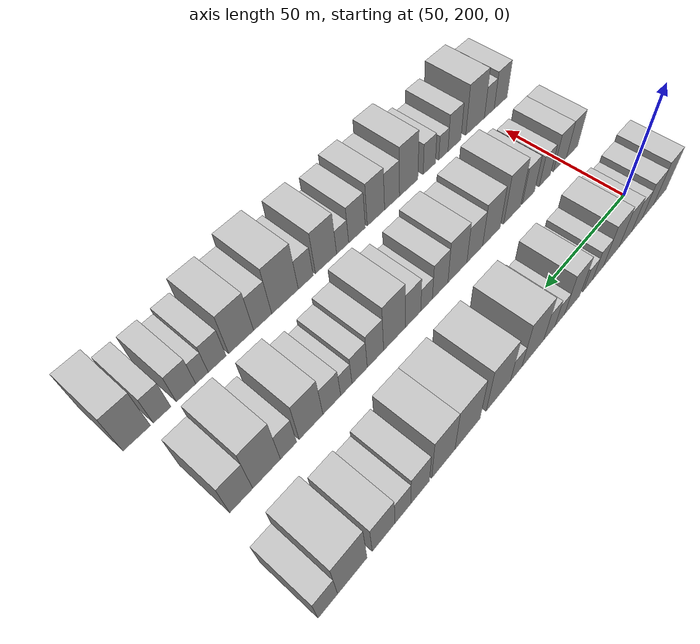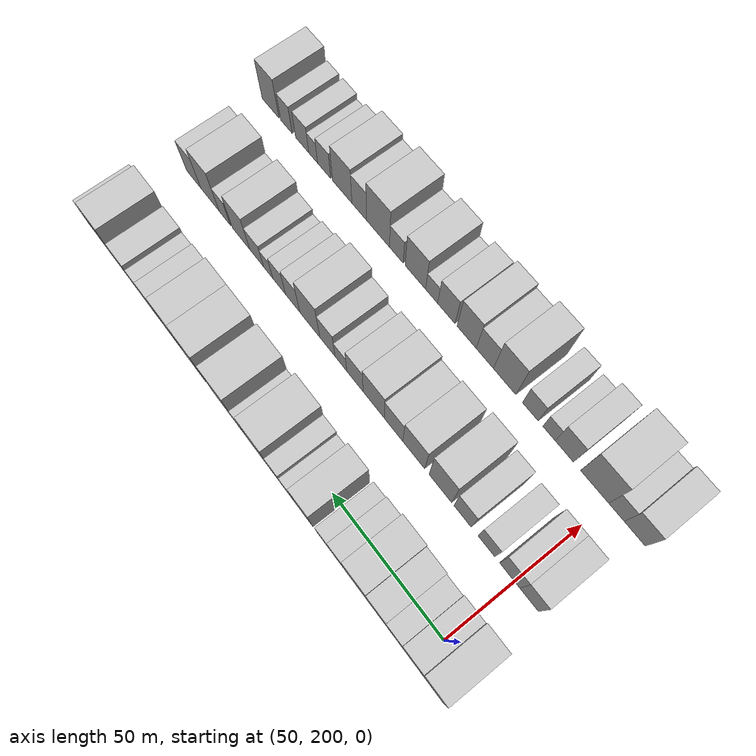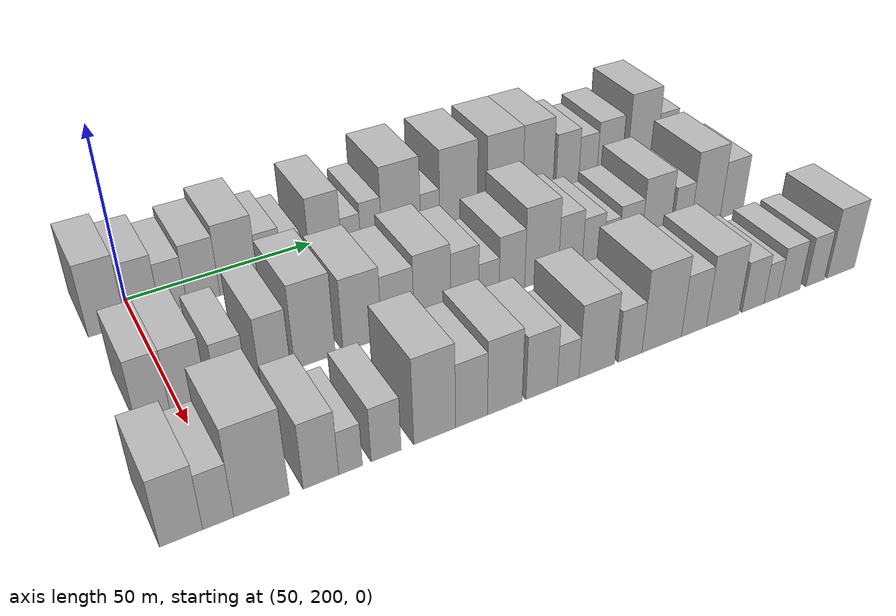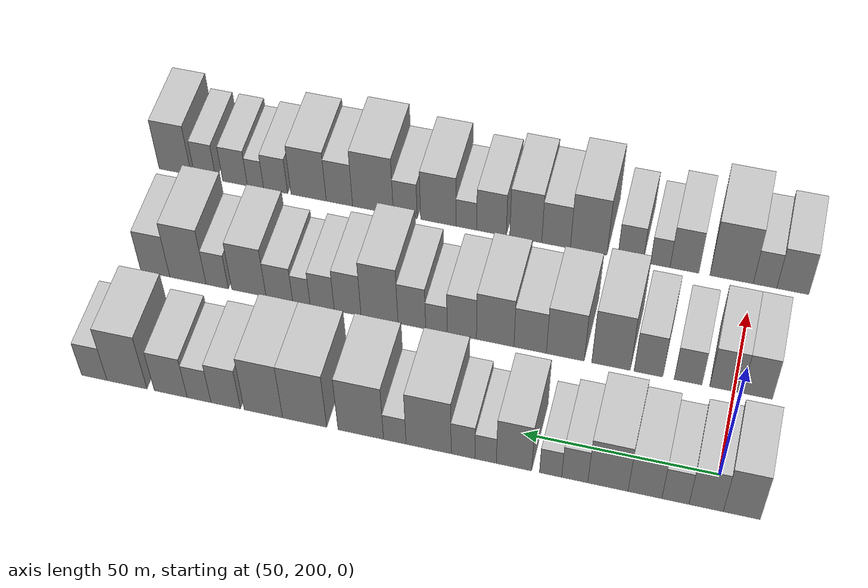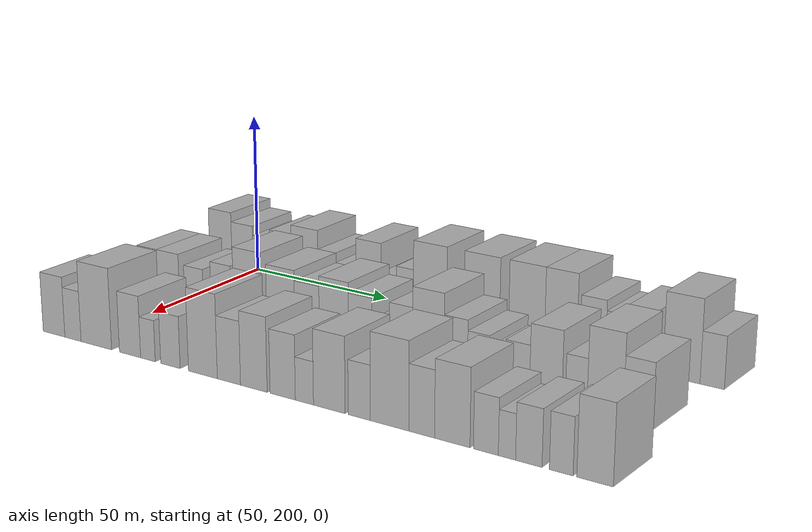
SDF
<sdf version="1.6">
 <world name="default">
  <model name="building_63">
   <static>1</static>
   <pose>50.0000 193.0189 0 0.000000 0.000000 0.000000</pose>
   <link name="link">
    <pose>0 0 10.50 0 0 0</pose>
    <collision name="collision"><geometry><box><size>20.0000 9.1562 21.0000</size></box></geometry></collision>
    <visual name="visual">
     <cast_shadows>0</cast_shadows>
     <geometry><box><size>20.0000 9.1562 21.0000</size></box></geometry>
     <material>
      <script>
       <uri>model://HANNAS_wall/materials/scripts</uri>
       <uri>model://HANNAS_wall/materials/textures</uri>
       <name>vrc/HANNAS_wall</name>
      </script>
     </material>
    </visual>
   </link>
  </model>
  <model name="building_64">
   <static>1</static>
   <pose>50.0000 201.8512 0 0.000000 0.000000 0.000000</pose>
   <link name="link">
    <pose>0 0 9.00 0 0 0</pose>
    <collision name="collision"><geometry><box><size>20.0000 8.5085 18.0000</size></box></geometry></collision>
    <visual name="visual">
     <cast_shadows>0</cast_shadows>
     <geometry><box><size>20.0000 8.5085 18.0000</size></box></geometry>
     <material>
      <script>
       <uri>model://HANNAS_wall/materials/scripts</uri>
       <uri>model://HANNAS_wall/materials/textures</uri>
       <name>vrc/HANNAS_wall</name>
      </script>
     </material>
    </visual>
   </link>
  </model>
  <model name="building_65">
   <static>1</static>
   <pose>50.0000 209.4964 0 0.000000 0.000000 0.000000</pose>
   <link name="link">
    <pose>0 0 7.50 0 0 0</pose>
    <collision name="collision"><geometry><box><size>20.0000 6.7819 15.0000</size></box></geometry></collision>
    <visual name="visual">
     <cast_shadows>0</cast_shadows>
     <geometry><box><size>20.0000 6.7819 15.0000</size></box></geometry>
     <material>
      <script>
       <uri>model://HANNAS_wall/materials/scripts</uri>
       <uri>model://HANNAS_wall/materials/textures</uri>
       <name>vrc/HANNAS_wall</name>
      </script>
     </material>
    </visual>
   </link>
  </model>
  <model name="building_66">
   <static>1</static>
   <pose>50.0000 217.1254 0 0.000000 0.000000 0.000000</pose>
   <link name="link">
    <pose>0 0 9.00 0 0 0</pose>
    <collision name="collision"><geometry><box><size>20.0000 8.4761 18.0000</size></box></geometry></collision>
    <visual name="visual">
     <cast_shadows>0</cast_shadows>
     <geometry><box><size>20.0000 8.4761 18.0000</size></box></geometry>
     <material>
      <script>
       <uri>model://HANNAS_wall/materials/scripts</uri>
       <uri>model://HANNAS_wall/materials/textures</uri>
       <name>vrc/HANNAS_wall</name>
      </script>
     </material>
    </visual>
   </link>
  </model>
  <model name="building_67">
   <static>1</static>
   <pose>50.0000 226.4490 0 0.000000 0.000000 0.000000</pose>
   <link name="link">
    <pose>0 0 10.50 0 0 0</pose>
    <collision name="collision"><geometry><box><size>20.0000 10.1712 21.0000</size></box></geometry></collision>
    <visual name="visual">
     <cast_shadows>0</cast_shadows>
     <geometry><box><size>20.0000 10.1712 21.0000</size></box></geometry>
     <material>
      <script>
       <uri>model://HANNAS_wall/materials/scripts</uri>
       <uri>model://HANNAS_wall/materials/textures</uri>
       <name>vrc/HANNAS_wall</name>
      </script>
     </material>
    </visual>
   </link>
  </model>
  <model name="building_68">
   <static>1</static>
   <pose>50.0000 234.8489 0 0.000000 0.000000 0.000000</pose>
   <link name="link">
    <pose>0 0 7.50 0 0 0</pose>
    <collision name="collision"><geometry><box><size>20.0000 6.6286 15.0000</size></box></geometry></collision>
    <visual name="visual">
     <cast_shadows>0</cast_shadows>
     <geometry><box><size>20.0000 6.6286 15.0000</size></box></geometry>
     <material>
      <script>
       <uri>model://HANNAS_wall/materials/scripts</uri>
       <uri>model://HANNAS_wall/materials/textures</uri>
       <name>vrc/HANNAS_wall</name>
      </script>
     </material>
    </visual>
   </link>
  </model>
  <model name="building_69">
   <static>1</static>
   <pose>50.0000 240.9820 0 0.000000 0.000000 0.000000</pose>
   <link name="link">
    <pose>0 0 6.00 0 0 0</pose>
    <collision name="collision"><geometry><box><size>20.0000 5.6377 12.0000</size></box></geometry></collision>
    <visual name="visual">
     <cast_shadows>0</cast_shadows>
     <geometry><box><size>20.0000 5.6377 12.0000</size></box></geometry>
     <material>
      <script>
       <uri>model://HANNAS_wall/materials/scripts</uri>
       <uri>model://HANNAS_wall/materials/textures</uri>
       <name>vrc/HANNAS_wall</name>
      </script>
     </material>
    </visual>
   </link>
  </model>
  <model name="building_70">
   <static>1</static>
   <pose>50.0000 250.3461 0 0.000000 0.000000 0.000000</pose>
   <link name="link">
    <pose>0 0 10.50 0 0 0</pose>
    <collision name="collision"><geometry><box><size>20.0000 9.0903 21.0000</size></box></geometry></collision>
    <visual name="visual">
     <cast_shadows>0</cast_shadows>
     <geometry><box><size>20.0000 9.0903 21.0000</size></box></geometry>
     <material>
      <script>
       <uri>model://HANNAS_wall/materials/scripts</uri>
       <uri>model://HANNAS_wall/materials/textures</uri>
       <name>vrc/HANNAS_wall</name>
      </script>
     </material>
    </visual>
   </link>
  </model>
  <model name="building_71">
   <static>1</static>
   <pose>50.0000 257.6381 0 0.000000 0.000000 0.000000</pose>
   <link name="link">
    <pose>0 0 6.00 0 0 0</pose>
    <collision name="collision"><geometry><box><size>20.0000 5.4939 12.0000</size></box></geometry></collision>
    <visual name="visual">
     <cast_shadows>0</cast_shadows>
     <geometry><box><size>20.0000 5.4939 12.0000</size></box></geometry>
     <material>
      <script>
       <uri>model://HANNAS_wall/materials/scripts</uri>
       <uri>model://HANNAS_wall/materials/textures</uri>
       <name>vrc/HANNAS_wall</name>
      </script>
     </material>
    </visual>
   </link>
  </model>
  <model name="building_72">
   <static>1</static>
   <pose>50.0000 263.4640 0 0.000000 0.000000 0.000000</pose>
   <link name="link">
    <pose>0 0 7.50 0 0 0</pose>
    <collision name="collision"><geometry><box><size>20.0000 6.1577 15.0000</size></box></geometry></collision>
    <visual name="visual">
     <cast_shadows>0</cast_shadows>
     <geometry><box><size>20.0000 6.1577 15.0000</size></box></geometry>
     <material>
      <script>
       <uri>model://HANNAS_wall/materials/scripts</uri>
       <uri>model://HANNAS_wall/materials/textures</uri>
       <name>vrc/HANNAS_wall</name>
      </script>
     </material>
    </visual>
   </link>
  </model>
  <model name="building_73">
   <static>1</static>
   <pose>50.0000 272.3923 0 0.000000 0.000000 0.000000</pose>
   <link name="link">
    <pose>0 0 12.00 0 0 0</pose>
    <collision name="collision"><geometry><box><size>20.0000 11.6989 24.0000</size></box></geometry></collision>
    <visual name="visual">
     <cast_shadows>0</cast_shadows>
     <geometry><box><size>20.0000 11.6989 24.0000</size></box></geometry>
     <material>
      <script>
       <uri>model://HANNAS_wall/materials/scripts</uri>
       <uri>model://HANNAS_wall/materials/textures</uri>
       <name>vrc/HANNAS_wall</name>
      </script>
     </material>
    </visual>
   </link>
  </model>
  <model name="building_74">
   <static>1</static>
   <pose>50.0000 281.1939 0 0.000000 0.000000 0.000000</pose>
   <link name="link">
    <pose>0 0 6.00 0 0 0</pose>
    <collision name="collision"><geometry><box><size>20.0000 5.9044 12.0000</size></box></geometry></collision>
    <visual name="visual">
     <cast_shadows>0</cast_shadows>
     <geometry><box><size>20.0000 5.9044 12.0000</size></box></geometry>
     <material>
      <script>
       <uri>model://HANNAS_wall/materials/scripts</uri>
       <uri>model://HANNAS_wall/materials/textures</uri>
       <name>vrc/HANNAS_wall</name>
      </script>
     </material>
    </visual>
   </link>
  </model>
  <model name="building_75">
   <static>1</static>
   <pose>50.0000 290.1240 0 0.000000 0.000000 0.000000</pose>
   <link name="link">
    <pose>0 0 12.00 0 0 0</pose>
    <collision name="collision"><geometry><box><size>20.0000 11.9559 24.0000</size></box></geometry></collision>
    <visual name="visual">
     <cast_shadows>0</cast_shadows>
     <geometry><box><size>20.0000 11.9559 24.0000</size></box></geometry>
     <material>
      <script>
       <uri>model://HANNAS_wall/materials/scripts</uri>
       <uri>model://HANNAS_wall/materials/textures</uri>
       <name>vrc/HANNAS_wall</name>
      </script>
     </material>
    </visual>
   </link>
  </model>
  <model name="building_76">
   <static>1</static>
   <pose>50.0000 304.9578 0 0.000000 0.000000 0.000000</pose>
   <link name="link">
    <pose>0 0 12.00 0 0 0</pose>
    <collision name="collision"><geometry><box><size>20.0000 11.7115 24.0000</size></box></geometry></collision>
    <visual name="visual">
     <cast_shadows>0</cast_shadows>
     <geometry><box><size>20.0000 11.7115 24.0000</size></box></geometry>
     <material>
      <script>
       <uri>model://HANNAS_wall/materials/scripts</uri>
       <uri>model://HANNAS_wall/materials/textures</uri>
       <name>vrc/HANNAS_wall</name>
      </script>
     </material>
    </visual>
   </link>
  </model>
  <model name="building_77">
   <static>1</static>
   <pose>50.0000 315.9468 0 0.000000 0.000000 0.000000</pose>
   <link name="link">
    <pose>0 0 12.00 0 0 0</pose>
    <collision name="collision"><geometry><box><size>20.0000 10.2665 24.0000</size></box></geometry></collision>
    <visual name="visual">
     <cast_shadows>0</cast_shadows>
     <geometry><box><size>20.0000 10.2665 24.0000</size></box></geometry>
     <material>
      <script>
       <uri>model://HANNAS_wall/materials/scripts</uri>
       <uri>model://HANNAS_wall/materials/textures</uri>
       <name>vrc/HANNAS_wall</name>
      </script>
     </material>
    </visual>
   </link>
  </model>
  <model name="building_78">
   <static>1</static>
   <pose>50.0000 326.0517 0 0.000000 0.000000 0.000000</pose>
   <link name="link">
    <pose>0 0 9.00 0 0 0</pose>
    <collision name="collision"><geometry><box><size>20.0000 7.9432 18.0000</size></box></geometry></collision>
    <visual name="visual">
     <cast_shadows>0</cast_shadows>
     <geometry><box><size>20.0000 7.9432 18.0000</size></box></geometry>
     <material>
      <script>
       <uri>model://HANNAS_wall/materials/scripts</uri>
       <uri>model://HANNAS_wall/materials/textures</uri>
       <name>vrc/HANNAS_wall</name>
      </script>
     </material>
    </visual>
   </link>
  </model>
  <model name="building_79">
   <static>1</static>
   <pose>50.0000 333.2417 0 0.000000 0.000000 0.000000</pose>
   <link name="link">
    <pose>0 0 7.50 0 0 0</pose>
    <collision name="collision"><geometry><box><size>20.0000 6.4369 15.0000</size></box></geometry></collision>
    <visual name="visual">
     <cast_shadows>0</cast_shadows>
     <geometry><box><size>20.0000 6.4369 15.0000</size></box></geometry>
     <material>
      <script>
       <uri>model://HANNAS_wall/materials/scripts</uri>
       <uri>model://HANNAS_wall/materials/textures</uri>
       <name>vrc/HANNAS_wall</name>
      </script>
     </material>
    </visual>
   </link>
  </model>
  <model name="building_80">
   <static>1</static>
   <pose>50.0000 340.9319 0 0.000000 0.000000 0.000000</pose>
   <link name="link">
    <pose>0 0 9.00 0 0 0</pose>
    <collision name="collision"><geometry><box><size>20.0000 8.9435 18.0000</size></box></geometry></collision>
    <visual name="visual">
     <cast_shadows>0</cast_shadows>
     <geometry><box><size>20.0000 8.9435 18.0000</size></box></geometry>
     <material>
      <script>
       <uri>model://HANNAS_wall/materials/scripts</uri>
       <uri>model://HANNAS_wall/materials/textures</uri>
       <name>vrc/HANNAS_wall</name>
      </script>
     </material>
    </visual>
   </link>
  </model>
  <model name="building_81">
   <static>1</static>
   <pose>50.0000 352.8697 0 0.000000 0.000000 0.000000</pose>
   <link name="link">
    <pose>0 0 12.00 0 0 0</pose>
    <collision name="collision"><geometry><box><size>20.0000 10.9321 24.0000</size></box></geometry></collision>
    <visual name="visual">
     <cast_shadows>0</cast_shadows>
     <geometry><box><size>20.0000 10.9321 24.0000</size></box></geometry>
     <material>
      <script>
       <uri>model://HANNAS_wall/materials/scripts</uri>
       <uri>model://HANNAS_wall/materials/textures</uri>
       <name>vrc/HANNAS_wall</name>
      </script>
     </material>
    </visual>
   </link>
  </model>
  <model name="building_82">
   <static>1</static>
   <pose>50.0000 361.8307 0 0.000000 0.000000 0.000000</pose>
   <link name="link">
    <pose>0 0 7.50 0 0 0</pose>
    <collision name="collision"><geometry><box><size>20.0000 6.9900 15.0000</size></box></geometry></collision>
    <visual name="visual">
     <cast_shadows>0</cast_shadows>
     <geometry><box><size>20.0000 6.9900 15.0000</size></box></geometry>
     <material>
      <script>
       <uri>model://HANNAS_wall/materials/scripts</uri>
       <uri>model://HANNAS_wall/materials/textures</uri>
       <name>vrc/HANNAS_wall</name>
      </script>
     </material>
    </visual>
   </link>
  </model>
  <model name="building_148">
   <static>1</static>
   <pose>85.0000 193.9170 0 0.000000 0.000000 0.000000</pose>
   <link name="link">
    <pose>0 0 9.00 0 0 0</pose>
    <collision name="collision"><geometry><box><size>20.0000 7.7061 18.0000</size></box></geometry></collision>
    <visual name="visual">
     <cast_shadows>0</cast_shadows>
     <geometry><box><size>20.0000 7.7061 18.0000</size></box></geometry>
     <material>
      <script>
       <uri>model://HANNAS_wall/materials/scripts</uri>
       <uri>model://HANNAS_wall/materials/textures</uri>
       <name>vrc/HANNAS_wall</name>
      </script>
     </material>
    </visual>
   </link>
  </model>
  <model name="building_149">
   <static>1</static>
   <pose>85.0000 202.0451 0 0.000000 0.000000 0.000000</pose>
   <link name="link">
    <pose>0 0 9.00 0 0 0</pose>
    <collision name="collision"><geometry><box><size>20.0000 8.5500 18.0000</size></box></geometry></collision>
    <visual name="visual">
     <cast_shadows>0</cast_shadows>
     <geometry><box><size>20.0000 8.5500 18.0000</size></box></geometry>
     <material>
      <script>
       <uri>model://HANNAS_wall/materials/scripts</uri>
       <uri>model://HANNAS_wall/materials/textures</uri>
       <name>vrc/HANNAS_wall</name>
      </script>
     </material>
    </visual>
   </link>
  </model>
  <model name="building_150">
   <static>1</static>
   <pose>85.0000 211.9480 0 0.000000 0.000000 0.000000</pose>
   <link name="link">
    <pose>0 0 7.50 0 0 0</pose>
    <collision name="collision"><geometry><box><size>20.0000 7.2558 15.0000</size></box></geometry></collision>
    <visual name="visual">
     <cast_shadows>0</cast_shadows>
     <geometry><box><size>20.0000 7.2558 15.0000</size></box></geometry>
     <material>
      <script>
       <uri>model://HANNAS_wall/materials/scripts</uri>
       <uri>model://HANNAS_wall/materials/textures</uri>
       <name>vrc/HANNAS_wall</name>
      </script>
     </material>
    </visual>
   </link>
  </model>
  <model name="building_151">
   <static>1</static>
   <pose>85.0000 222.3644 0 0.000000 0.000000 0.000000</pose>
   <link name="link">
    <pose>0 0 9.00 0 0 0</pose>
    <collision name="collision"><geometry><box><size>20.0000 7.5770 18.0000</size></box></geometry></collision>
    <visual name="visual">
     <cast_shadows>0</cast_shadows>
     <geometry><box><size>20.0000 7.5770 18.0000</size></box></geometry>
     <material>
      <script>
       <uri>model://HANNAS_wall/materials/scripts</uri>
       <uri>model://HANNAS_wall/materials/textures</uri>
       <name>vrc/HANNAS_wall</name>
      </script>
     </material>
    </visual>
   </link>
  </model>
  <model name="building_152">
   <static>1</static>
   <pose>85.0000 232.2553 0 0.000000 0.000000 0.000000</pose>
   <link name="link">
    <pose>0 0 12.00 0 0 0</pose>
    <collision name="collision"><geometry><box><size>20.0000 10.2046 24.0000</size></box></geometry></collision>
    <visual name="visual">
     <cast_shadows>0</cast_shadows>
     <geometry><box><size>20.0000 10.2046 24.0000</size></box></geometry>
     <material>
      <script>
       <uri>model://HANNAS_wall/materials/scripts</uri>
       <uri>model://HANNAS_wall/materials/textures</uri>
       <name>vrc/HANNAS_wall</name>
      </script>
     </material>
    </visual>
   </link>
  </model>
  <model name="building_153">
   <static>1</static>
   <pose>85.0000 244.4070 0 0.000000 0.000000 0.000000</pose>
   <link name="link">
    <pose>0 0 10.50 0 0 0</pose>
    <collision name="collision"><geometry><box><size>20.0000 10.0989 21.0000</size></box></geometry></collision>
    <visual name="visual">
     <cast_shadows>0</cast_shadows>
     <geometry><box><size>20.0000 10.0989 21.0000</size></box></geometry>
     <material>
      <script>
       <uri>model://HANNAS_wall/materials/scripts</uri>
       <uri>model://HANNAS_wall/materials/textures</uri>
       <name>vrc/HANNAS_wall</name>
      </script>
     </material>
    </visual>
   </link>
  </model>
  <model name="building_154">
   <static>1</static>
   <pose>85.0000 253.8148 0 0.000000 0.000000 0.000000</pose>
   <link name="link">
    <pose>0 0 9.00 0 0 0</pose>
    <collision name="collision"><geometry><box><size>20.0000 8.7166 18.0000</size></box></geometry></collision>
    <visual name="visual">
     <cast_shadows>0</cast_shadows>
     <geometry><box><size>20.0000 8.7166 18.0000</size></box></geometry>
     <material>
      <script>
       <uri>model://HANNAS_wall/materials/scripts</uri>
       <uri>model://HANNAS_wall/materials/textures</uri>
       <name>vrc/HANNAS_wall</name>
      </script>
     </material>
    </visual>
   </link>
  </model>
  <model name="building_155">
   <static>1</static>
   <pose>85.0000 263.2232 0 0.000000 0.000000 0.000000</pose>
   <link name="link">
    <pose>0 0 10.50 0 0 0</pose>
    <collision name="collision"><geometry><box><size>20.0000 10.1004 21.0000</size></box></geometry></collision>
    <visual name="visual">
     <cast_shadows>0</cast_shadows>
     <geometry><box><size>20.0000 10.1004 21.0000</size></box></geometry>
     <material>
      <script>
       <uri>model://HANNAS_wall/materials/scripts</uri>
       <uri>model://HANNAS_wall/materials/textures</uri>
       <name>vrc/HANNAS_wall</name>
      </script>
     </material>
    </visual>
   </link>
  </model>
  <model name="building_156">
   <static>1</static>
   <pose>85.0000 272.2607 0 0.000000 0.000000 0.000000</pose>
   <link name="link">
    <pose>0 0 9.00 0 0 0</pose>
    <collision name="collision"><geometry><box><size>20.0000 7.9745 18.0000</size></box></geometry></collision>
    <visual name="visual">
     <cast_shadows>0</cast_shadows>
     <geometry><box><size>20.0000 7.9745 18.0000</size></box></geometry>
     <material>
      <script>
       <uri>model://HANNAS_wall/materials/scripts</uri>
       <uri>model://HANNAS_wall/materials/textures</uri>
       <name>vrc/HANNAS_wall</name>
      </script>
     </material>
    </visual>
   </link>
  </model>
  <model name="building_157">
   <static>1</static>
   <pose>85.0000 279.1628 0 0.000000 0.000000 0.000000</pose>
   <link name="link">
    <pose>0 0 6.00 0 0 0</pose>
    <collision name="collision"><geometry><box><size>20.0000 5.8297 12.0000</size></box></geometry></collision>
    <visual name="visual">
     <cast_shadows>0</cast_shadows>
     <geometry><box><size>20.0000 5.8297 12.0000</size></box></geometry>
     <material>
      <script>
       <uri>model://HANNAS_wall/materials/scripts</uri>
       <uri>model://HANNAS_wall/materials/textures</uri>
       <name>vrc/HANNAS_wall</name>
      </script>
     </material>
    </visual>
   </link>
  </model>
  <model name="building_158">
   <static>1</static>
   <pose>85.0000 285.8648 0 0.000000 0.000000 0.000000</pose>
   <link name="link">
    <pose>0 0 9.00 0 0 0</pose>
    <collision name="collision"><geometry><box><size>20.0000 7.5744 18.0000</size></box></geometry></collision>
    <visual name="visual">
     <cast_shadows>0</cast_shadows>
     <geometry><box><size>20.0000 7.5744 18.0000</size></box></geometry>
     <material>
      <script>
       <uri>model://HANNAS_wall/materials/scripts</uri>
       <uri>model://HANNAS_wall/materials/textures</uri>
       <name>vrc/HANNAS_wall</name>
      </script>
     </material>
    </visual>
   </link>
  </model>
  <model name="building_159">
   <static>1</static>
   <pose>85.0000 294.7354 0 0.000000 0.000000 0.000000</pose>
   <link name="link">
    <pose>0 0 12.00 0 0 0</pose>
    <collision name="collision"><geometry><box><size>20.0000 10.1668 24.0000</size></box></geometry></collision>
    <visual name="visual">
     <cast_shadows>0</cast_shadows>
     <geometry><box><size>20.0000 10.1668 24.0000</size></box></geometry>
     <material>
      <script>
       <uri>model://HANNAS_wall/materials/scripts</uri>
       <uri>model://HANNAS_wall/materials/textures</uri>
       <name>vrc/HANNAS_wall</name>
      </script>
     </material>
    </visual>
   </link>
  </model>
  <model name="building_160">
   <static>1</static>
   <pose>85.0000 303.5212 0 0.000000 0.000000 0.000000</pose>
   <link name="link">
    <pose>0 0 9.00 0 0 0</pose>
    <collision name="collision"><geometry><box><size>20.0000 7.4047 18.0000</size></box></geometry></collision>
    <visual name="visual">
     <cast_shadows>0</cast_shadows>
     <geometry><box><size>20.0000 7.4047 18.0000</size></box></geometry>
     <material>
      <script>
       <uri>model://HANNAS_wall/materials/scripts</uri>
       <uri>model://HANNAS_wall/materials/textures</uri>
       <name>vrc/HANNAS_wall</name>
      </script>
     </material>
    </visual>
   </link>
  </model>
  <model name="building_161">
   <static>1</static>
   <pose>85.0000 310.5881 0 0.000000 0.000000 0.000000</pose>
   <link name="link">
    <pose>0 0 7.50 0 0 0</pose>
    <collision name="collision"><geometry><box><size>20.0000 6.7292 15.0000</size></box></geometry></collision>
    <visual name="visual">
     <cast_shadows>0</cast_shadows>
     <geometry><box><size>20.0000 6.7292 15.0000</size></box></geometry>
     <material>
      <script>
       <uri>model://HANNAS_wall/materials/scripts</uri>
       <uri>model://HANNAS_wall/materials/textures</uri>
       <name>vrc/HANNAS_wall</name>
      </script>
     </material>
    </visual>
   </link>
  </model>
  <model name="building_162">
   <static>1</static>
   <pose>85.0000 316.3822 0 0.000000 0.000000 0.000000</pose>
   <link name="link">
    <pose>0 0 6.00 0 0 0</pose>
    <collision name="collision"><geometry><box><size>20.0000 4.8588 12.0000</size></box></geometry></collision>
    <visual name="visual">
     <cast_shadows>0</cast_shadows>
     <geometry><box><size>20.0000 4.8588 12.0000</size></box></geometry>
     <material>
      <script>
       <uri>model://HANNAS_wall/materials/scripts</uri>
       <uri>model://HANNAS_wall/materials/textures</uri>
       <name>vrc/HANNAS_wall</name>
      </script>
     </material>
    </visual>
   </link>
  </model>
  <model name="building_163">
   <static>1</static>
   <pose>85.0000 322.5435 0 0.000000 0.000000 0.000000</pose>
   <link name="link">
    <pose>0 0 7.50 0 0 0</pose>
    <collision name="collision"><geometry><box><size>20.0000 7.4639 15.0000</size></box></geometry></collision>
    <visual name="visual">
     <cast_shadows>0</cast_shadows>
     <geometry><box><size>20.0000 7.4639 15.0000</size></box></geometry>
     <material>
      <script>
       <uri>model://HANNAS_wall/materials/scripts</uri>
       <uri>model://HANNAS_wall/materials/textures</uri>
       <name>vrc/HANNAS_wall</name>
      </script>
     </material>
    </visual>
   </link>
  </model>
  <model name="building_164">
   <static>1</static>
   <pose>85.0000 331.0790 0 0.000000 0.000000 0.000000</pose>
   <link name="link">
    <pose>0 0 10.50 0 0 0</pose>
    <collision name="collision"><geometry><box><size>20.0000 9.6071 21.0000</size></box></geometry></collision>
    <visual name="visual">
     <cast_shadows>0</cast_shadows>
     <geometry><box><size>20.0000 9.6071 21.0000</size></box></geometry>
     <material>
      <script>
       <uri>model://HANNAS_wall/materials/scripts</uri>
       <uri>model://HANNAS_wall/materials/textures</uri>
       <name>vrc/HANNAS_wall</name>
      </script>
     </material>
    </visual>
   </link>
  </model>
  <model name="building_165">
   <static>1</static>
   <pose>85.0000 340.0198 0 0.000000 0.000000 0.000000</pose>
   <link name="link">
    <pose>0 0 7.50 0 0 0</pose>
    <collision name="collision"><geometry><box><size>20.0000 6.2745 15.0000</size></box></geometry></collision>
    <visual name="visual">
     <cast_shadows>0</cast_shadows>
     <geometry><box><size>20.0000 6.2745 15.0000</size></box></geometry>
     <material>
      <script>
       <uri>model://HANNAS_wall/materials/scripts</uri>
       <uri>model://HANNAS_wall/materials/textures</uri>
       <name>vrc/HANNAS_wall</name>
      </script>
     </material>
    </visual>
   </link>
  </model>
  <model name="building_166">
   <static>1</static>
   <pose>85.0000 348.3271 0 0.000000 0.000000 0.000000</pose>
   <link name="link">
    <pose>0 0 12.00 0 0 0</pose>
    <collision name="collision"><geometry><box><size>20.0000 10.3402 24.0000</size></box></geometry></collision>
    <visual name="visual">
     <cast_shadows>0</cast_shadows>
     <geometry><box><size>20.0000 10.3402 24.0000</size></box></geometry>
     <material>
      <script>
       <uri>model://HANNAS_wall/materials/scripts</uri>
       <uri>model://HANNAS_wall/materials/textures</uri>
       <name>vrc/HANNAS_wall</name>
      </script>
     </material>
    </visual>
   </link>
  </model>
  <model name="building_167">
   <static>1</static>
   <pose>85.0000 357.6233 0 0.000000 0.000000 0.000000</pose>
   <link name="link">
    <pose>0 0 9.00 0 0 0</pose>
    <collision name="collision"><geometry><box><size>20.0000 8.2522 18.0000</size></box></geometry></collision>
    <visual name="visual">
     <cast_shadows>0</cast_shadows>
     <geometry><box><size>20.0000 8.2522 18.0000</size></box></geometry>
     <material>
      <script>
       <uri>model://HANNAS_wall/materials/scripts</uri>
       <uri>model://HANNAS_wall/materials/textures</uri>
       <name>vrc/HANNAS_wall</name>
      </script>
     </material>
    </visual>
   </link>
  </model>
  <model name="building_224">
   <static>1</static>
   <pose>120.0000 189.1527 0 0.000000 0.000000 0.000000</pose>
   <link name="link">
    <pose>0 0 9.00 0 0 0</pose>
    <collision name="collision"><geometry><box><size>20.0000 8.6334 18.0000</size></box></geometry></collision>
    <visual name="visual">
     <cast_shadows>0</cast_shadows>
     <geometry><box><size>20.0000 8.6334 18.0000</size></box></geometry>
     <material>
      <script>
       <uri>model://HANNAS_wall/materials/scripts</uri>
       <uri>model://HANNAS_wall/materials/textures</uri>
       <name>vrc/HANNAS_wall</name>
      </script>
     </material>
    </visual>
   </link>
  </model>
  <model name="building_225">
   <static>1</static>
   <pose>120.0000 196.6598 0 0.000000 0.000000 0.000000</pose>
   <link name="link">
    <pose>0 0 7.50 0 0 0</pose>
    <collision name="collision"><geometry><box><size>20.0000 6.3808 15.0000</size></box></geometry></collision>
    <visual name="visual">
     <cast_shadows>0</cast_shadows>
     <geometry><box><size>20.0000 6.3808 15.0000</size></box></geometry>
     <material>
      <script>
       <uri>model://HANNAS_wall/materials/scripts</uri>
       <uri>model://HANNAS_wall/materials/textures</uri>
       <name>vrc/HANNAS_wall</name>
      </script>
     </material>
    </visual>
   </link>
  </model>
  <model name="building_226">
   <static>1</static>
   <pose>120.0000 205.7343 0 0.000000 0.000000 0.000000</pose>
   <link name="link">
    <pose>0 0 12.00 0 0 0</pose>
    <collision name="collision"><geometry><box><size>20.0000 11.7684 24.0000</size></box></geometry></collision>
    <visual name="visual">
     <cast_shadows>0</cast_shadows>
     <geometry><box><size>20.0000 11.7684 24.0000</size></box></geometry>
     <material>
      <script>
       <uri>model://HANNAS_wall/materials/scripts</uri>
       <uri>model://HANNAS_wall/materials/textures</uri>
       <name>vrc/HANNAS_wall</name>
      </script>
     </material>
    </visual>
   </link>
  </model>
  <model name="building_227">
   <static>1</static>
   <pose>120.0000 218.5741 0 0.000000 0.000000 0.000000</pose>
   <link name="link">
    <pose>0 0 9.00 0 0 0</pose>
    <collision name="collision"><geometry><box><size>20.0000 7.9111 18.0000</size></box></geometry></collision>
    <visual name="visual">
     <cast_shadows>0</cast_shadows>
     <geometry><box><size>20.0000 7.9111 18.0000</size></box></geometry>
     <material>
      <script>
       <uri>model://HANNAS_wall/materials/scripts</uri>
       <uri>model://HANNAS_wall/materials/textures</uri>
       <name>vrc/HANNAS_wall</name>
      </script>
     </material>
    </visual>
   </link>
  </model>
  <model name="building_228">
   <static>1</static>
   <pose>120.0000 225.2334 0 0.000000 0.000000 0.000000</pose>
   <link name="link">
    <pose>0 0 6.00 0 0 0</pose>
    <collision name="collision"><geometry><box><size>20.0000 5.4076 12.0000</size></box></geometry></collision>
    <visual name="visual">
     <cast_shadows>0</cast_shadows>
     <geometry><box><size>20.0000 5.4076 12.0000</size></box></geometry>
     <material>
      <script>
       <uri>model://HANNAS_wall/materials/scripts</uri>
       <uri>model://HANNAS_wall/materials/textures</uri>
       <name>vrc/HANNAS_wall</name>
      </script>
     </material>
    </visual>
   </link>
  </model>
  <model name="building_229">
   <static>1</static>
   <pose>120.0000 233.4515 0 0.000000 0.000000 0.000000</pose>
   <link name="link">
    <pose>0 0 7.50 0 0 0</pose>
    <collision name="collision"><geometry><box><size>20.0000 7.0285 15.0000</size></box></geometry></collision>
    <visual name="visual">
     <cast_shadows>0</cast_shadows>
     <geometry><box><size>20.0000 7.0285 15.0000</size></box></geometry>
     <material>
      <script>
       <uri>model://HANNAS_wall/materials/scripts</uri>
       <uri>model://HANNAS_wall/materials/textures</uri>
       <name>vrc/HANNAS_wall</name>
      </script>
     </material>
    </visual>
   </link>
  </model>
  <model name="building_230">
   <static>1</static>
   <pose>120.0000 245.0593 0 0.000000 0.000000 0.000000</pose>
   <link name="link">
    <pose>0 0 12.00 0 0 0</pose>
    <collision name="collision"><geometry><box><size>20.0000 10.1871 24.0000</size></box></geometry></collision>
    <visual name="visual">
     <cast_shadows>0</cast_shadows>
     <geometry><box><size>20.0000 10.1871 24.0000</size></box></geometry>
     <material>
      <script>
       <uri>model://HANNAS_wall/materials/scripts</uri>
       <uri>model://HANNAS_wall/materials/textures</uri>
       <name>vrc/HANNAS_wall</name>
      </script>
     </material>
    </visual>
   </link>
  </model>
  <model name="building_231">
   <static>1</static>
   <pose>120.0000 254.1532 0 0.000000 0.000000 0.000000</pose>
   <link name="link">
    <pose>0 0 9.00 0 0 0</pose>
    <collision name="collision"><geometry><box><size>20.0000 8.0007 18.0000</size></box></geometry></collision>
    <visual name="visual">
     <cast_shadows>0</cast_shadows>
     <geometry><box><size>20.0000 8.0007 18.0000</size></box></geometry>
     <material>
      <script>
       <uri>model://HANNAS_wall/materials/scripts</uri>
       <uri>model://HANNAS_wall/materials/textures</uri>
       <name>vrc/HANNAS_wall</name>
      </script>
     </material>
    </visual>
   </link>
  </model>
  <model name="building_232">
   <static>1</static>
   <pose>120.0000 262.6513 0 0.000000 0.000000 0.000000</pose>
   <link name="link">
    <pose>0 0 10.50 0 0 0</pose>
    <collision name="collision"><geometry><box><size>20.0000 8.9957 21.0000</size></box></geometry></collision>
    <visual name="visual">
     <cast_shadows>0</cast_shadows>
     <geometry><box><size>20.0000 8.9957 21.0000</size></box></geometry>
     <material>
      <script>
       <uri>model://HANNAS_wall/materials/scripts</uri>
       <uri>model://HANNAS_wall/materials/textures</uri>
       <name>vrc/HANNAS_wall</name>
      </script>
     </material>
    </visual>
   </link>
  </model>
  <model name="building_233">
   <static>1</static>
   <pose>120.0000 272.3204 0 0.000000 0.000000 0.000000</pose>
   <link name="link">
    <pose>0 0 9.00 0 0 0</pose>
    <collision name="collision"><geometry><box><size>20.0000 8.3424 18.0000</size></box></geometry></collision>
    <visual name="visual">
     <cast_shadows>0</cast_shadows>
     <geometry><box><size>20.0000 8.3424 18.0000</size></box></geometry>
     <material>
      <script>
       <uri>model://HANNAS_wall/materials/scripts</uri>
       <uri>model://HANNAS_wall/materials/textures</uri>
       <name>vrc/HANNAS_wall</name>
      </script>
     </material>
    </visual>
   </link>
  </model>
  <model name="building_234">
   <static>1</static>
   <pose>120.0000 279.4382 0 0.000000 0.000000 0.000000</pose>
   <link name="link">
    <pose>0 0 6.00 0 0 0</pose>
    <collision name="collision"><geometry><box><size>20.0000 5.8932 12.0000</size></box></geometry></collision>
    <visual name="visual">
     <cast_shadows>0</cast_shadows>
     <geometry><box><size>20.0000 5.8932 12.0000</size></box></geometry>
     <material>
      <script>
       <uri>model://HANNAS_wall/materials/scripts</uri>
       <uri>model://HANNAS_wall/materials/textures</uri>
       <name>vrc/HANNAS_wall</name>
      </script>
     </material>
    </visual>
   </link>
  </model>
  <model name="building_235">
   <static>1</static>
   <pose>120.0000 287.4205 0 0.000000 0.000000 0.000000</pose>
   <link name="link">
    <pose>0 0 10.50 0 0 0</pose>
    <collision name="collision"><geometry><box><size>20.0000 10.0714 21.0000</size></box></geometry></collision>
    <visual name="visual">
     <cast_shadows>0</cast_shadows>
     <geometry><box><size>20.0000 10.0714 21.0000</size></box></geometry>
     <material>
      <script>
       <uri>model://HANNAS_wall/materials/scripts</uri>
       <uri>model://HANNAS_wall/materials/textures</uri>
       <name>vrc/HANNAS_wall</name>
      </script>
     </material>
    </visual>
   </link>
  </model>
  <model name="building_236">
   <static>1</static>
   <pose>120.0000 296.8780 0 0.000000 0.000000 0.000000</pose>
   <link name="link">
    <pose>0 0 7.50 0 0 0</pose>
    <collision name="collision"><geometry><box><size>20.0000 6.8436 15.0000</size></box></geometry></collision>
    <visual name="visual">
     <cast_shadows>0</cast_shadows>
     <geometry><box><size>20.0000 6.8436 15.0000</size></box></geometry>
     <material>
      <script>
       <uri>model://HANNAS_wall/materials/scripts</uri>
       <uri>model://HANNAS_wall/materials/textures</uri>
       <name>vrc/HANNAS_wall</name>
      </script>
     </material>
    </visual>
   </link>
  </model>
  <model name="building_237">
   <static>1</static>
   <pose>120.0000 306.1683 0 0.000000 0.000000 0.000000</pose>
   <link name="link">
    <pose>0 0 12.00 0 0 0</pose>
    <collision name="collision"><geometry><box><size>20.0000 11.7372 24.0000</size></box></geometry></collision>
    <visual name="visual">
     <cast_shadows>0</cast_shadows>
     <geometry><box><size>20.0000 11.7372 24.0000</size></box></geometry>
     <material>
      <script>
       <uri>model://HANNAS_wall/materials/scripts</uri>
       <uri>model://HANNAS_wall/materials/textures</uri>
       <name>vrc/HANNAS_wall</name>
      </script>
     </material>
    </visual>
   </link>
  </model>
  <model name="building_238">
   <static>1</static>
   <pose>120.0000 315.8698 0 0.000000 0.000000 0.000000</pose>
   <link name="link">
    <pose>0 0 9.00 0 0 0</pose>
    <collision name="collision"><geometry><box><size>20.0000 7.6658 18.0000</size></box></geometry></collision>
    <visual name="visual">
     <cast_shadows>0</cast_shadows>
     <geometry><box><size>20.0000 7.6658 18.0000</size></box></geometry>
     <material>
      <script>
       <uri>model://HANNAS_wall/materials/scripts</uri>
       <uri>model://HANNAS_wall/materials/textures</uri>
       <name>vrc/HANNAS_wall</name>
      </script>
     </material>
    </visual>
   </link>
  </model>
  <model name="building_239">
   <static>1</static>
   <pose>120.0000 324.8340 0 0.000000 0.000000 0.000000</pose>
   <link name="link">
    <pose>0 0 10.50 0 0 0</pose>
    <collision name="collision"><geometry><box><size>20.0000 10.2626 21.0000</size></box></geometry></collision>
    <visual name="visual">
     <cast_shadows>0</cast_shadows>
     <geometry><box><size>20.0000 10.2626 21.0000</size></box></geometry>
     <material>
      <script>
       <uri>model://HANNAS_wall/materials/scripts</uri>
       <uri>model://HANNAS_wall/materials/textures</uri>
       <name>vrc/HANNAS_wall</name>
      </script>
     </material>
    </visual>
   </link>
  </model>
  <model name="building_240">
   <static>1</static>
   <pose>120.0000 334.4855 0 0.000000 0.000000 0.000000</pose>
   <link name="link">
    <pose>0 0 7.50 0 0 0</pose>
    <collision name="collision"><geometry><box><size>20.0000 7.0403 15.0000</size></box></geometry></collision>
    <visual name="visual">
     <cast_shadows>0</cast_shadows>
     <geometry><box><size>20.0000 7.0403 15.0000</size></box></geometry>
     <material>
      <script>
       <uri>model://HANNAS_wall/materials/scripts</uri>
       <uri>model://HANNAS_wall/materials/textures</uri>
       <name>vrc/HANNAS_wall</name>
      </script>
     </material>
    </visual>
   </link>
  </model>
  <model name="building_241">
   <static>1</static>
   <pose>120.0000 340.4079 0 0.000000 0.000000 0.000000</pose>
   <link name="link">
    <pose>0 0 6.00 0 0 0</pose>
    <collision name="collision"><geometry><box><size>20.0000 4.8045 12.0000</size></box></geometry></collision>
    <visual name="visual">
     <cast_shadows>0</cast_shadows>
     <geometry><box><size>20.0000 4.8045 12.0000</size></box></geometry>
     <material>
      <script>
       <uri>model://HANNAS_wall/materials/scripts</uri>
       <uri>model://HANNAS_wall/materials/textures</uri>
       <name>vrc/HANNAS_wall</name>
      </script>
     </material>
    </visual>
   </link>
  </model>
  <model name="building_242">
   <static>1</static>
   <pose>120.0000 346.4368 0 0.000000 0.000000 0.000000</pose>
   <link name="link">
    <pose>0 0 7.50 0 0 0</pose>
    <collision name="collision"><geometry><box><size>20.0000 7.2532 15.0000</size></box></geometry></collision>
    <visual name="visual">
     <cast_shadows>0</cast_shadows>
     <geometry><box><size>20.0000 7.2532 15.0000</size></box></geometry>
     <material>
      <script>
       <uri>model://HANNAS_wall/materials/scripts</uri>
       <uri>model://HANNAS_wall/materials/textures</uri>
       <name>vrc/HANNAS_wall</name>
      </script>
     </material>
    </visual>
   </link>
  </model>
  <model name="building_243">
   <static>1</static>
   <pose>120.0000 355.2381 0 0.000000 0.000000 0.000000</pose>
   <link name="link">
    <pose>0 0 7.50 0 0 0</pose>
    <collision name="collision"><geometry><box><size>20.0000 6.3494 15.0000</size></box></geometry></collision>
    <visual name="visual">
     <cast_shadows>0</cast_shadows>
     <geometry><box><size>20.0000 6.3494 15.0000</size></box></geometry>
     <material>
      <script>
       <uri>model://HANNAS_wall/materials/scripts</uri>
       <uri>model://HANNAS_wall/materials/textures</uri>
       <name>vrc/HANNAS_wall</name>
      </script>
     </material>
    </visual>
   </link>
  </model>
  <model name="building_244">
   <static>1</static>
   <pose>120.0000 364.1899 0 0.000000 0.000000 0.000000</pose>
   <link name="link">
    <pose>0 0 10.50 0 0 0</pose>
    <collision name="collision"><geometry><box><size>20.0000 9.5543 21.0000</size></box></geometry></collision>
    <visual name="visual">
     <cast_shadows>0</cast_shadows>
     <geometry><box><size>20.0000 9.5543 21.0000</size></box></geometry>
     <material>
      <script>
       <uri>model://HANNAS_wall/materials/scripts</uri>
       <uri>model://HANNAS_wall/materials/textures</uri>
       <name>vrc/HANNAS_wall</name>
      </script>
     </material>
    </visual>
   </link>
  </model>
 </world>
</sdf>
